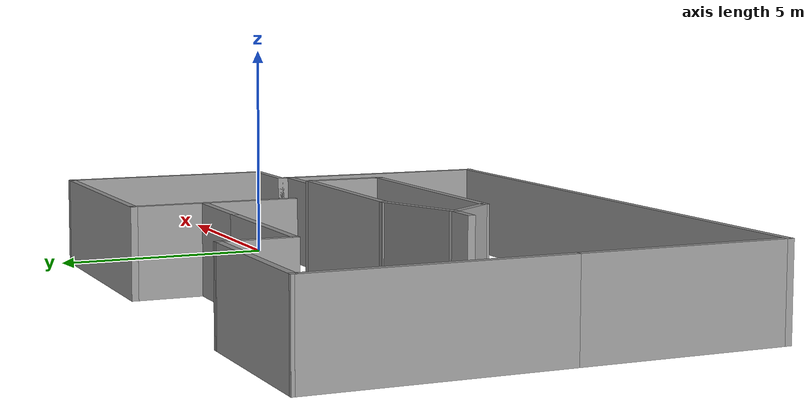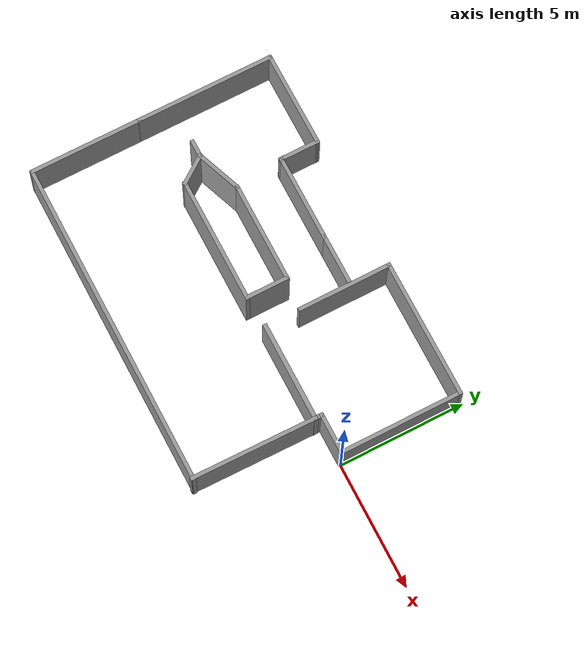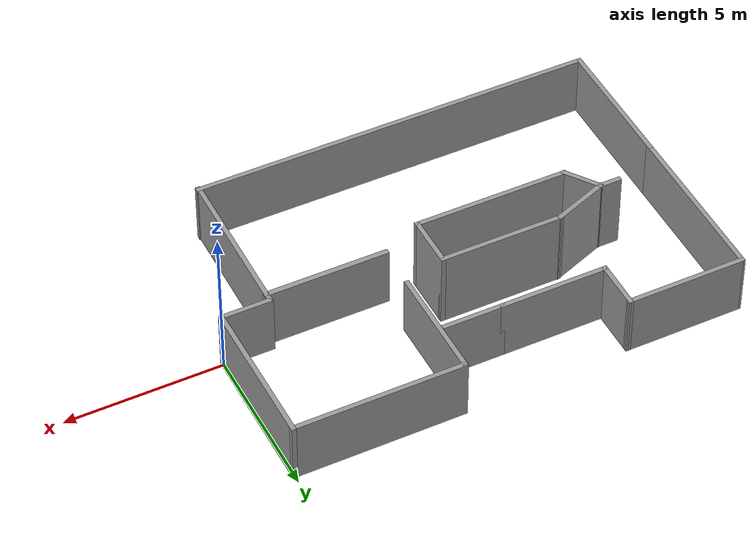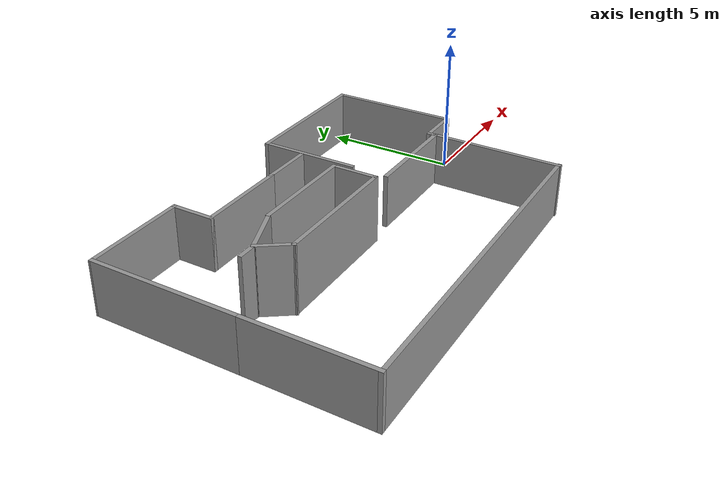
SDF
<?xml version='1.0'?>
<sdf version='1.7'>
  <model name='Basement'>
    <pose>-7.20212 -0.184538 0 0 -0 0</pose>
    <link name='Wall_0'>
      <collision name='Wall_0_Collision'>
        <geometry>
          <box>
            <size>4.876 0.15 2</size>
          </box>
        </geometry>
        <pose>0 0 1 0 -0 0</pose>
      </collision>
      <visual name='Wall_0_Visual'>
        <pose>0 0 1 0 -0 0</pose>
        <geometry>
          <box>
            <size>4.876 0.15 2</size>
          </box>
        </geometry>
        <material>
          <script>
            <uri>file://media/materials/scripts/gazebo.material</uri>
            <name>Gazebo/Grey</name>
          </script>
          <ambient>1 1 1 1</ambient>
        </material>
        <meta>
          <layer>0</layer>
        </meta>
      </visual>
      <pose>7.20212 2.54754 0 0 -0 1.5708</pose>
    </link>
    <link name='Wall_10'>
      <collision name='Wall_10_Collision'>
        <geometry>
          <box>
            <size>4.98852 0.15 2</size>
          </box>
        </geometry>
        <pose>0 0 1 0 -0 0</pose>
      </collision>
      <visual name='Wall_10_Visual'>
        <pose>0 0 1 0 -0 0</pose>
        <geometry>
          <box>
            <size>4.98852 0.15 2</size>
          </box>
        </geometry>
        <material>
          <script>
            <uri>file://media/materials/scripts/gazebo.material</uri>
            <name>Gazebo/Grey</name>
          </script>
          <ambient>1 1 1 1</ambient>
        </material>
        <meta>
          <layer>0</layer>
        </meta>
      </visual>
      <pose>5.64804 -2.49054 0 0 -0 -1.58323</pose>
    </link>
    <link name='Wall_11'>
      <collision name='Wall_11_Collision'>
        <geometry>
          <box>
            <size>13 0.15 2</size>
          </box>
        </geometry>
        <pose>0 0 1 0 -0 0</pose>
      </collision>
      <visual name='Wall_11_Visual'>
        <pose>0 0 1 0 -0 0</pose>
        <geometry>
          <box>
            <size>13 0.15 2</size>
          </box>
        </geometry>
        <material>
          <script>
            <uri>file://media/materials/scripts/gazebo.material</uri>
            <name>Gazebo/Grey</name>
          </script>
          <ambient>1 1 1 1</ambient>
        </material>
        <meta>
          <layer>0</layer>
        </meta>
      </visual>
      <pose>-0.776956 -4.87954 0 0 -0 3.14159</pose>
    </link>
    <link name='Wall_12'>
      <collision name='Wall_12_Collision'>
        <geometry>
          <box>
            <size>4.5 0.15 2</size>
          </box>
        </geometry>
        <pose>0 0 1 0 -0 0</pose>
      </collision>
      <visual name='Wall_12_Visual'>
        <pose>0 0 1 0 -0 0</pose>
        <geometry>
          <box>
            <size>4.5 0.15 2</size>
          </box>
        </geometry>
        <material>
          <script>
            <uri>file://media/materials/scripts/gazebo.material</uri>
            <name>Gazebo/Grey</name>
          </script>
          <ambient>1 1 1 1</ambient>
        </material>
        <meta>
          <layer>0</layer>
        </meta>
      </visual>
      <pose>-7.20196 -2.70454 0 0 -0 1.5708</pose>
    </link>
    <link name='Wall_15'>
      <collision name='Wall_15_Collision'>
        <geometry>
          <box>
            <size>5.5 0.15 2</size>
          </box>
        </geometry>
        <pose>0 0 1 0 -0 0</pose>
      </collision>
      <visual name='Wall_15_Visual'>
        <pose>0 0 1 0 -0 0</pose>
        <geometry>
          <box>
            <size>5.5 0.15 2</size>
          </box>
        </geometry>
        <material>
          <script>
            <uri>file://media/materials/scripts/gazebo.material</uri>
            <name>Gazebo/Grey</name>
          </script>
          <ambient>1 1 1 1</ambient>
        </material>
        <meta>
          <layer>0</layer>
        </meta>
      </visual>
      <pose>-7.20196 2.14546 0 0 -0 1.5708</pose>
    </link>
    <link name='Wall_16'>
      <collision name='Wall_16_Collision'>
        <geometry>
          <box>
            <size>3.86008 0.15 2</size>
          </box>
        </geometry>
        <pose>0 0 1 0 -0 0</pose>
      </collision>
      <visual name='Wall_16_Visual'>
        <pose>0 0 1 0 -0 0</pose>
        <geometry>
          <box>
            <size>3.86008 0.15 2</size>
          </box>
        </geometry>
        <material>
          <script>
            <uri>file://media/materials/scripts/gazebo.material</uri>
            <name>Gazebo/Grey</name>
          </script>
          <ambient>1 1 1 1</ambient>
        </material>
        <meta>
          <layer>0</layer>
        </meta>
      </visual>
      <pose>-5.34692 4.8245 0 0 -0 0.002176</pose>
    </link>
    <link name='Wall_17'>
      <collision name='Wall_17_Collision'>
        <geometry>
          <box>
            <size>1.626 0.15 2</size>
          </box>
        </geometry>
        <pose>0 0 1 0 -0 0</pose>
      </collision>
      <visual name='Wall_17_Visual'>
        <pose>0 0 1 0 -0 0</pose>
        <geometry>
          <box>
            <size>1.626 0.15 2</size>
          </box>
        </geometry>
        <material>
          <script>
            <uri>file://media/materials/scripts/gazebo.material</uri>
            <name>Gazebo/Grey</name>
          </script>
          <ambient>1 1 1 1</ambient>
        </material>
        <meta>
          <layer>0</layer>
        </meta>
      </visual>
      <pose>-3.49188 4.09054 0 0 -0 -1.5708</pose>
    </link>
    <link name='Wall_21'>
      <collision name='Wall_21_Collision'>
        <geometry>
          <box>
            <size>3.5 0.15 2</size>
          </box>
        </geometry>
        <pose>0 0 1 0 -0 0</pose>
      </collision>
      <visual name='Wall_21_Visual'>
        <pose>0 0 1 0 -0 0</pose>
        <geometry>
          <box>
            <size>3.5 0.15 2</size>
          </box>
        </geometry>
        <material>
          <script>
            <uri>file://media/materials/scripts/gazebo.material</uri>
            <name>Gazebo/Grey</name>
          </script>
          <ambient>1 1 1 1</ambient>
        </material>
        <meta>
          <layer>0</layer>
        </meta>
      </visual>
      <pose>-1.81688 3.35254 0 0 -0 0</pose>
    </link>
    <link name='Wall_28'>
      <collision name='Wall_28_Collision'>
        <geometry>
          <box>
            <size>3.734 0.15 2</size>
          </box>
        </geometry>
        <pose>0 0 1 0 -0 0</pose>
      </collision>
      <visual name='Wall_28_Visual'>
        <pose>0 0 1 0 -0 0</pose>
        <geometry>
          <box>
            <size>3.734 0.15 2</size>
          </box>
        </geometry>
        <material>
          <script>
            <uri>file://media/materials/scripts/gazebo.material</uri>
            <name>Gazebo/Grey</name>
          </script>
          <ambient>1 1 1 1</ambient>
        </material>
        <meta>
          <layer>0</layer>
        </meta>
      </visual>
      <pose>1.86612 3.11854 0 0 -0 -1.5708</pose>
    </link>
    <link name='Wall_30'>
      <collision name='Wall_30_Collision'>
        <geometry>
          <box>
            <size>2 0.15 2</size>
          </box>
        </geometry>
        <pose>0 0 1 0 -0 0</pose>
      </collision>
      <visual name='Wall_30_Visual'>
        <pose>0 0 1 0 -0 0</pose>
        <geometry>
          <box>
            <size>2 0.15 2</size>
          </box>
        </geometry>
        <material>
          <script>
            <uri>file://media/materials/scripts/gazebo.material</uri>
            <name>Gazebo/Grey</name>
          </script>
          <ambient>1 1 1 1</ambient>
        </material>
        <meta>
          <layer>0</layer>
        </meta>
      </visual>
      <pose>0.783119 3.35254 0 0 -0 0</pose>
    </link>
    <link name='Wall_32'>
      <collision name='Wall_32_Collision'>
        <geometry>
          <box>
            <size>1.75 0.15 2.5</size>
          </box>
        </geometry>
        <pose>0 0 1.25 0 -0 0</pose>
      </collision>
      <visual name='Wall_32_Visual'>
        <pose>0 0 1.25 0 -0 0</pose>
        <geometry>
          <box>
            <size>1.75 0.15 2.5</size>
          </box>
        </geometry>
        <material>
          <script>
            <uri>file://media/materials/scripts/gazebo.material</uri>
            <name>Gazebo/Grey</name>
          </script>
          <ambient>1 1 1 1</ambient>
        </material>
        <meta>
          <layer>0</layer>
        </meta>
      </visual>
      <pose>0.752479 0.564965 0 0 -0 -1.5708</pose>
    </link>
    <link name='Wall_33'>
      <collision name='Wall_33_Collision'>
        <geometry>
          <box>
            <size>5 0.15 2.5</size>
          </box>
        </geometry>
        <pose>0 0 1.25 0 -0 0</pose>
      </collision>
      <visual name='Wall_33_Visual'>
        <pose>0 0 1.25 0 -0 0</pose>
        <geometry>
          <box>
            <size>5 0.15 2.5</size>
          </box>
        </geometry>
        <material>
          <script>
            <uri>file://media/materials/scripts/gazebo.material</uri>
            <name>Gazebo/Grey</name>
          </script>
          <ambient>1 1 1 1</ambient>
        </material>
        <meta>
          <layer>0</layer>
        </meta>
      </visual>
      <pose>-1.67252 -0.235035 0 0 -0 3.14159</pose>
    </link>
    <link name='Wall_34'>
      <collision name='Wall_34_Collision'>
        <geometry>
          <box>
            <size>1.33104 0.15 2.5</size>
          </box>
        </geometry>
        <pose>0 0 1.25 0 -0 0</pose>
      </collision>
      <visual name='Wall_34_Visual'>
        <pose>0 0 1.25 0 -0 0</pose>
        <geometry>
          <box>
            <size>1.33104 0.15 2.5</size>
          </box>
        </geometry>
        <material>
          <script>
            <uri>file://media/materials/scripts/gazebo.material</uri>
            <name>Gazebo/Grey</name>
          </script>
          <ambient>1 1 1 1</ambient>
        </material>
        <meta>
          <layer>0</layer>
        </meta>
      </visual>
      <pose>-4.44087 0.245406 0 0 -0 2.19129</pose>
    </link>
    <link name='Wall_35'>
      <collision name='Wall_35_Collision'>
        <geometry>
          <box>
            <size>0.75 0.15 2.5</size>
          </box>
        </geometry>
        <pose>0 0 1.25 0 -0 0</pose>
      </collision>
      <visual name='Wall_35_Visual'>
        <pose>0 0 1.25 0 -0 0</pose>
        <geometry>
          <box>
            <size>0.75 0.15 2.5</size>
          </box>
        </geometry>
        <material>
          <script>
            <uri>file://media/materials/scripts/gazebo.material</uri>
            <name>Gazebo/Grey</name>
          </script>
          <ambient>1 1 1 1</ambient>
        </material>
        <meta>
          <layer>0</layer>
        </meta>
      </visual>
      <pose>-5.08422 0.725847 0 0 -0 3.14159</pose>
    </link>
    <link name='Wall_37'>
      <collision name='Wall_37_Collision'>
        <geometry>
          <box>
            <size>1.95373 0.15 2.5</size>
          </box>
        </geometry>
        <pose>0 0 1.25 0 -0 0</pose>
      </collision>
      <visual name='Wall_37_Visual'>
        <pose>0 0 1.25 0 -0 0</pose>
        <geometry>
          <box>
            <size>1.95373 0.15 2.5</size>
          </box>
        </geometry>
        <material>
          <script>
            <uri>file://media/materials/scripts/gazebo.material</uri>
            <name>Gazebo/Grey</name>
          </script>
          <ambient>1 1 1 1</ambient>
        </material>
        <meta>
          <layer>0</layer>
        </meta>
      </visual>
      <pose>-3.94087 1.04541 0 0 -0 0.362199</pose>
    </link>
    <link name='Wall_38'>
      <collision name='Wall_38_Collision'>
        <geometry>
          <box>
            <size>4 0.15 2.5</size>
          </box>
        </geometry>
        <pose>0 0 1.25 0 -0 0</pose>
      </collision>
      <visual name='Wall_38_Visual'>
        <pose>0 0 1.25 0 -0 0</pose>
        <geometry>
          <box>
            <size>4 0.15 2.5</size>
          </box>
        </geometry>
        <material>
          <script>
            <uri>file://media/materials/scripts/gazebo.material</uri>
            <name>Gazebo/Grey</name>
          </script>
          <ambient>1 1 1 1</ambient>
        </material>
        <meta>
          <layer>0</layer>
        </meta>
      </visual>
      <pose>-1.17252 1.36496 0 0 -0 0</pose>
    </link>
    <link name='Wall_4'>
      <collision name='Wall_4_Collision'>
        <geometry>
          <box>
            <size>5.486 0.15 2</size>
          </box>
        </geometry>
        <pose>0 0 1 0 -0 0</pose>
      </collision>
      <visual name='Wall_4_Visual'>
        <pose>0 0 1 0 -0 0</pose>
        <geometry>
          <box>
            <size>5.486 0.15 2</size>
          </box>
        </geometry>
        <material>
          <script>
            <uri>file://media/materials/scripts/gazebo.material</uri>
            <name>Gazebo/Grey</name>
          </script>
          <ambient>1 1 1 1</ambient>
        </material>
        <meta>
          <layer>0</layer>
        </meta>
      </visual>
      <pose>4.53412 4.91054 0 0 -0 3.14159</pose>
    </link>
    <link name='Wall_6'>
      <collision name='Wall_6_Collision'>
        <geometry>
          <box>
            <size>1.674 0.15 2</size>
          </box>
        </geometry>
        <pose>0 0 1 0 -0 0</pose>
      </collision>
      <visual name='Wall_6_Visual'>
        <pose>0 0 1 0 -0 0</pose>
        <geometry>
          <box>
            <size>1.674 0.15 2</size>
          </box>
        </geometry>
        <material>
          <script>
            <uri>file://media/materials/scripts/gazebo.material</uri>
            <name>Gazebo/Grey</name>
          </script>
          <ambient>1 1 1 1</ambient>
        </material>
        <meta>
          <layer>0</layer>
        </meta>
      </visual>
      <pose>6.44012 0.184538 0 0 -0 3.14159</pose>
    </link>
    <link name='Wall_7'>
      <collision name='Wall_7_Collision'>
        <geometry>
          <box>
            <size>0.406 0.15 2</size>
          </box>
        </geometry>
        <pose>0 0 1 0 -0 0</pose>
      </collision>
      <visual name='Wall_7_Visual'>
        <pose>0 0 1 0 -0 0</pose>
        <geometry>
          <box>
            <size>0.406 0.15 2</size>
          </box>
        </geometry>
        <material>
          <script>
            <uri>file://media/materials/scripts/gazebo.material</uri>
            <name>Gazebo/Grey</name>
          </script>
          <ambient>1 1 1 1</ambient>
        </material>
        <meta>
          <layer>0</layer>
        </meta>
      </visual>
      <pose>5.67812 0.056538 0 0 -0 -1.5708</pose>
    </link>
    <link name='Wall_8'>
      <collision name='Wall_8_Collision'>
        <geometry>
          <box>
            <size>3.982 0.17 2</size>
          </box>
        </geometry>
        <pose>0 0 1 0 -0 0</pose>
      </collision>
      <visual name='Wall_8_Visual'>
        <pose>0 0 1 0 -0 0</pose>
        <geometry>
          <box>
            <size>3.982 0.17 2</size>
          </box>
        </geometry>
        <material>
          <script>
            <uri>file://media/materials/scripts/gazebo.material</uri>
            <name>Gazebo/Grey</name>
          </script>
          <ambient>1 1 1 1</ambient>
        </material>
        <meta>
          <layer>0</layer>
        </meta>
      </visual>
      <pose>3.77212 -0.071462 0 0 -0 3.14159</pose>
    </link>
    <static>1</static>
  </model>
</sdf>
